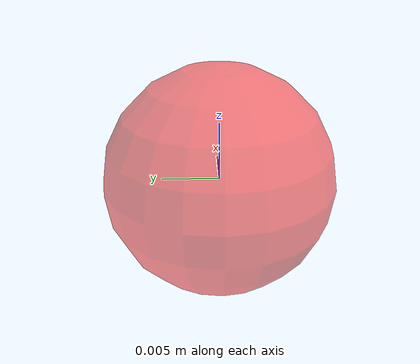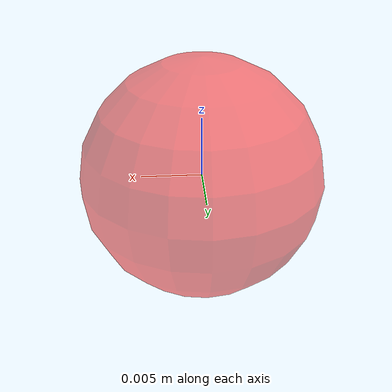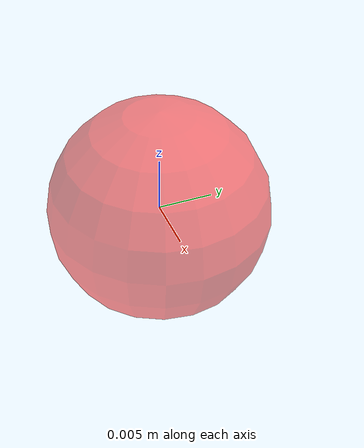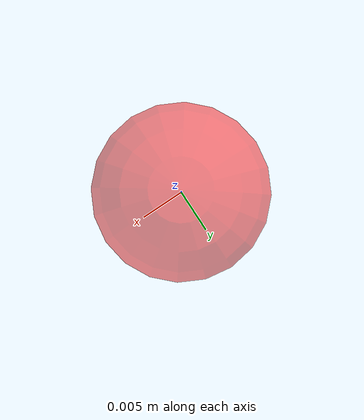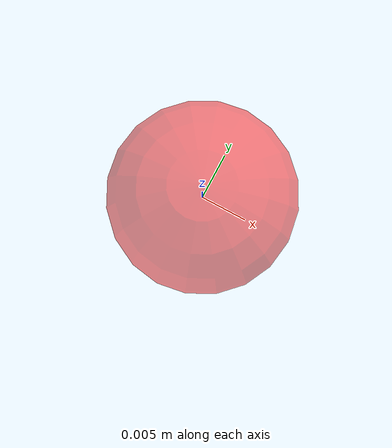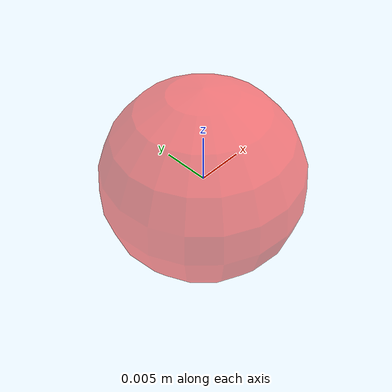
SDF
<?xml version="1.0" ?>
<sdf version="1.7">
  <world name="hand_world">

    <model name="fingertips_lcs">
      <!-- HARDCODED JOINT LIMITS -->

      <!-- FINGER 1 -->
      <link name="fingertip_1">
      <inertial>
        <mass>0.02</mass>
        <inertia>
          <ixx>8e-7</ixx>
          <iyy>8e-7</iyy>
          <izz>8e-7</izz>
          <ixy>0</ixy>
          <ixz>0</ixz>
          <iyz>0</iyz>
        </inertia>
      </inertial>
        <visual name="visual">
          <geometry>
            <sphere>
              <radius>0.01</radius>
            </sphere>
          </geometry>
          <material>
            <ambient>1 0 0 0.5</ambient>
            <diffuse>1 0 0 0.5</diffuse>
          </material>
        </visual>
        <collision name="collision">
          <geometry>
            <sphere>
              <radius>0.01</radius>
            </sphere>
          </geometry>
          <drake:proximity_properties>
            <drake:mu_static>0.7</drake:mu_static>
            <drake:mu_dynamic>0.7</drake:mu_dynamic>
            <drake:compliant_hydroelastic/>
            <drake:hunt_crossley_dissipation>10.0</drake:hunt_crossley_dissipation>
            <drake:hydroelastic_modulus>1e7</drake:hydroelastic_modulus>
            <drake:mesh_resolution_hint>0.005</drake:mesh_resolution_hint>
          </drake:proximity_properties>
        </collision>
      </link>

      <link name="base_link_1">
        <inertial>
          <mass>1.0e-6</mass>
          <inertia>
            <ixx>1.0e-6</ixx>
            <ixy>0</ixy>
            <ixz>0</ixz>
            <iyy>1.0e-6</iyy>
            <iyz>0</iyz>
            <izz>1.0e-6</izz>
          </inertia>
        </inertial>
      </link>
      <link name="link_x_1">
        <inertial>
          <mass>1.0e-6</mass>
          <inertia>
            <ixx>1.0e-6</ixx>
            <ixy>0</ixy>
            <ixz>0</ixz>
            <iyy>1.0e-6</iyy>
            <iyz>0</iyz>
            <izz>1.0e-6</izz>
          </inertia>
        </inertial>
      </link>
      <joint name="joint_x_1" type="prismatic">
        <parent>base_link_1</parent>
        <child>link_x_1</child>
        <axis>
          <xyz>1 0 0</xyz>
          <limit>
            <velocity> 0.1 </velocity>
            <lower> -0.07 </lower>
            <upper> 0.07 </upper>
          </limit>
          <dynamics>
            <damping>5</damping>
          </dynamics>
        </axis>
      </joint>

      <link name="link_y_1">
      <inertial>
          <mass>1.0e-6</mass>
          <inertia>
            <ixx>1.0e-6</ixx>
            <ixy>0</ixy>
            <ixz>0</ixz>
            <iyy>1.0e-6</iyy>
            <iyz>0</iyz>
            <izz>1.0e-6</izz>
          </inertia>
        </inertial>
      </link>
      <joint name="joint_y_1" type="prismatic">
        <parent>link_x_1</parent>
        <child>link_y_1</child>
        <axis>
          <xyz>0 1 0</xyz>
           <limit>
            <velocity> 0.1 </velocity>
            <lower> -0.00 </lower>
            <upper> 0.14 </upper>
          </limit>
          <dynamics>
            <damping>5</damping>
          </dynamics>
        </axis>
      </joint>

      <joint name="joint_z_1" type="prismatic">
        <parent>link_y_1</parent>
        <child>fingertip_1</child>
        <axis>
          <xyz>0 0 1</xyz>
          <limit>
            <velocity> 0.1 </velocity>
            <lower> 0.04 </lower>
            <upper> 0.12 </upper>
          </limit>
          <dynamics>
            <damping>5</damping>
          </dynamics>
        </axis>
      </joint>

      <!-- FINGER 2 -->
      <link name="fingertip_2">
      <inertial>
        <mass>0.02</mass>
        <inertia>
          <ixx>8e-7</ixx>
          <iyy>8e-7</iyy>
          <izz>8e-7</izz>
          <ixy>0</ixy>
          <ixz>0</ixz>
          <iyz>0</iyz>
        </inertia>
      </inertial>
        <visual name="visual">
          <geometry>
            <sphere>
              <radius>0.01</radius>
            </sphere>
          </geometry>
          <material>
            <ambient>0 1 0 0.5</ambient>
            <diffuse>0 1 0 0.5</diffuse>
          </material>
        </visual>
        <collision name="collision">
          <geometry>
            <sphere>
              <radius>0.01</radius>
            </sphere>
          </geometry>
          <drake:proximity_properties>
            <drake:mu_static>0.7</drake:mu_static>
            <drake:mu_dynamic>0.7</drake:mu_dynamic>
            <drake:compliant_hydroelastic/>
            <drake:hunt_crossley_dissipation>10.0</drake:hunt_crossley_dissipation>
            <drake:hydroelastic_modulus>1e7</drake:hydroelastic_modulus>
            <drake:mesh_resolution_hint>0.005</drake:mesh_resolution_hint>
          </drake:proximity_properties>
        </collision>
      </link>

      <link name="base_link_2">
        <inertial>
          <mass>1.0e-6</mass>
          <inertia>
            <ixx>1.0e-6</ixx>
            <ixy>0</ixy>
            <ixz>0</ixz>
            <iyy>1.0e-6</iyy>
            <iyz>0</iyz>
            <izz>1.0e-6</izz>
          </inertia>
        </inertial>
      </link>
      <link name="link_x_2">
        <inertial>
          <mass>1.0e-6</mass>
          <inertia>
            <ixx>1.0e-6</ixx>
            <ixy>0</ixy>
            <ixz>0</ixz>
            <iyy>1.0e-6</iyy>
            <iyz>0</iyz>
            <izz>1.0e-6</izz>
          </inertia>
        </inertial>
      </link>
      <joint name="joint_x_2" type="prismatic">
        <parent>base_link_2</parent>
        <child>link_x_2</child>
        <axis>
            <xyz>1 0 0</xyz>
          <limit>
            <velocity>0.1</velocity>
            <lower> -0.02 </lower>
            <upper> 0.12 </upper>
          </limit>
          <dynamics>
            <damping>5</damping>
          </dynamics>
        </axis>

      </joint>

      <link name="link_y_2">
        <inertial>
          <mass>1.0e-6</mass>
          <inertia>
            <ixx>1.0e-6</ixx>
            <ixy>0</ixy>
            <ixz>0</ixz>
            <iyy>1.0e-6</iyy>
            <iyz>0</iyz>
            <izz>1.0e-6</izz>
          </inertia>
        </inertial>
      </link>
      <joint name="joint_y_2" type="prismatic">
        <parent>link_x_2</parent>
        <child>link_y_2</child>
        <axis>
          <xyz>0 1 0</xyz>
          <limit>
            <velocity> 0.1 </velocity>
            <lower> -0.14 </lower>
            <upper> 0.0 </upper>
          </limit>
          <dynamics>
            <damping>5</damping>
          </dynamics>
        </axis>
      </joint>

      <joint name="joint_z_2" type="prismatic">
        <parent>link_y_2</parent>
        <child>fingertip_2</child>
        <axis>
          <xyz>0 0 1</xyz>
          <limit>
            <velocity> 0.1 </velocity>
            <lower> 0.04 </lower>
            <upper> 0.12 </upper>
          </limit>
          <dynamics>
            <damping>5</damping>
          </dynamics>
        </axis>
      </joint>

      <!-- FINGER 3 -->
      <link name="fingertip_3">
      <inertial>
        <mass>0.02</mass>
        <inertia>
          <ixx>8e-7</ixx>
          <iyy>8e-7</iyy>
          <izz>8e-7</izz>
          <ixy>0</ixy>
          <ixz>0</ixz>
          <iyz>0</iyz>
        </inertia>
      </inertial>
        <visual name="visual">
          <geometry>
            <sphere>
              <radius>0.01</radius>
            </sphere>
          </geometry>
          <material>
            <ambient>0 0 1 0.5</ambient>
            <diffuse>0 0 1 0.5</diffuse>
          </material>
        </visual>
        <collision name="collision">
          <geometry>
            <sphere>
              <radius>0.01</radius>
            </sphere>
          </geometry>
          <drake:proximity_properties>
            <drake:mu_static>0.7</drake:mu_static>
            <drake:mu_dynamic>0.7</drake:mu_dynamic>
            <drake:compliant_hydroelastic/>
            <drake:hunt_crossley_dissipation>10.0</drake:hunt_crossley_dissipation>
            <drake:hydroelastic_modulus>1e7</drake:hydroelastic_modulus>
            <drake:mesh_resolution_hint>0.005</drake:mesh_resolution_hint>
          </drake:proximity_properties>
        </collision>
      </link>

      <link name="base_link_3">
        <inertial>
          <mass>1.0e-6</mass>
          <inertia>
            <ixx>1.0e-6</ixx>
            <ixy>0</ixy>
            <ixz>0</ixz>
            <iyy>1.0e-6</iyy>
            <iyz>0</iyz>
            <izz>1.0e-6</izz>
          </inertia>
        </inertial>
      </link>
      <link name="link_x_3">
        <inertial>
          <mass>1.0e-6</mass>
          <inertia>
            <ixx>1.0e-6</ixx>
            <ixy>0</ixy>
            <ixz>0</ixz>
            <iyy>1.0e-6</iyy>
            <iyz>0</iyz>
            <izz>1.0e-6</izz>
          </inertia>
        </inertial>
      </link>
      <joint name="joint_x_3" type="prismatic">
        <parent>base_link_3</parent>
        <child>link_x_3</child>
        <axis>
          <xyz>1 0 0</xyz>
          <limit>
            <velocity> 0.1 </velocity>
            <lower> -0.12 </lower>
            <upper> 0.02 </upper>
          </limit>
          <dynamics>
            <damping>5</damping>
          </dynamics>
        </axis>
      </joint>

      <link name="link_y_3">
        <inertial>
          <mass>1.0e-6</mass>
          <inertia>
            <ixx>1.0e-6</ixx>
            <ixy>0</ixy>
            <ixz>0</ixz>
            <iyy>1.0e-6</iyy>
            <iyz>0</iyz>
            <izz>1.0e-6</izz>
          </inertia>
        </inertial>
      </link>
      <joint name="joint_y_3" type="prismatic">
        <parent>link_x_3</parent>
        <child>link_y_3</child>
        <axis>
          <xyz>0 1 0</xyz>
          <limit>
            <velocity> 0.1 </velocity>
            <lower> -0.14 </lower>
            <upper> 0.0 </upper>
          </limit>
          <dynamics>
            <damping>5</damping>
          </dynamics>
        </axis>
      </joint>

      <joint name="joint_z_3" type="prismatic">
        <parent>link_y_3</parent>
        <child>fingertip_3</child>
        <axis>
          <xyz>0 0 1</xyz>
          <limit>
            <velocity> 0.1 </velocity>
            <lower> 0.04 </lower>
            <upper> 0.12 </upper>
          </limit>
          <dynamics>
            <damping>5</damping>
          </dynamics>
        </axis>
      </joint>

    </model>
  </world>
</sdf>
